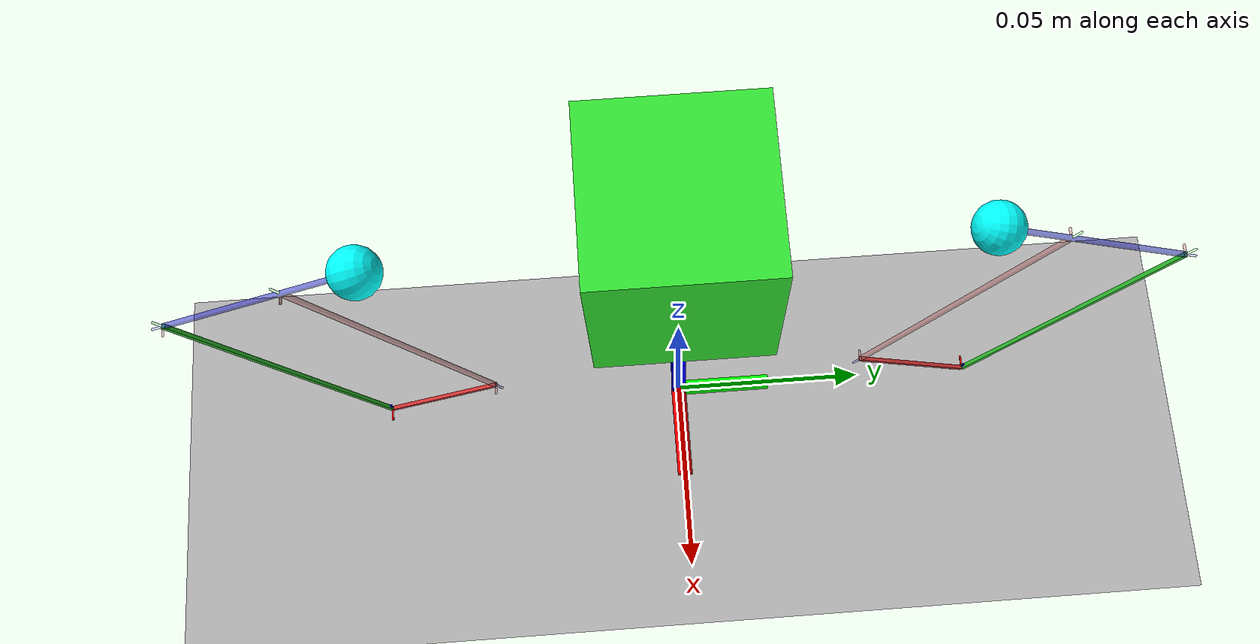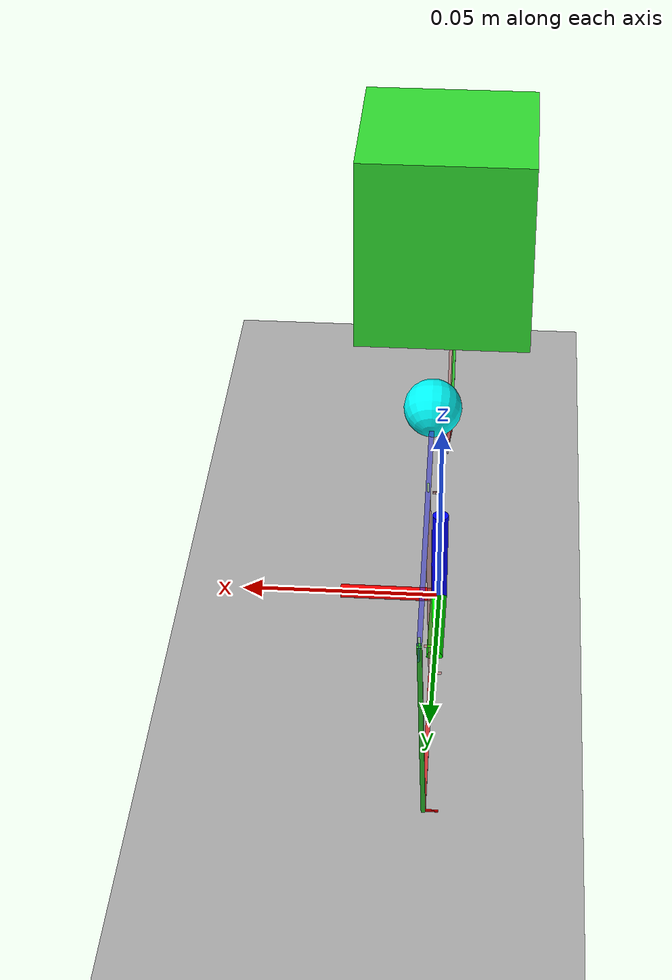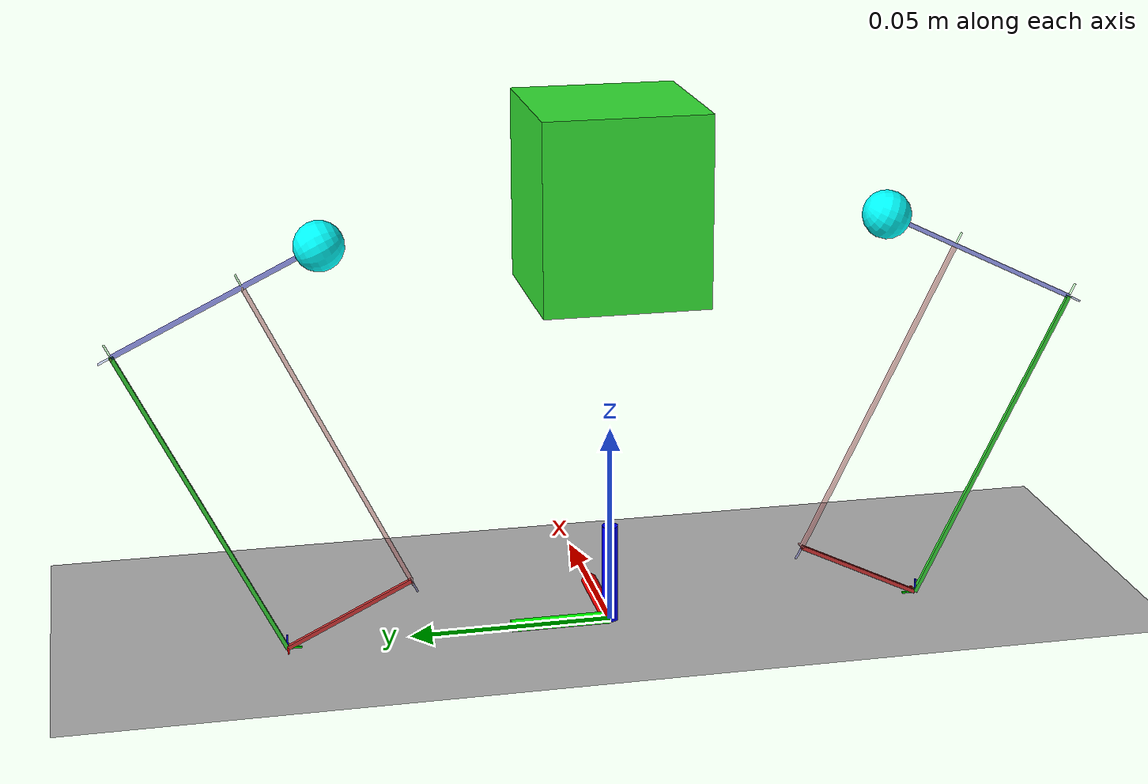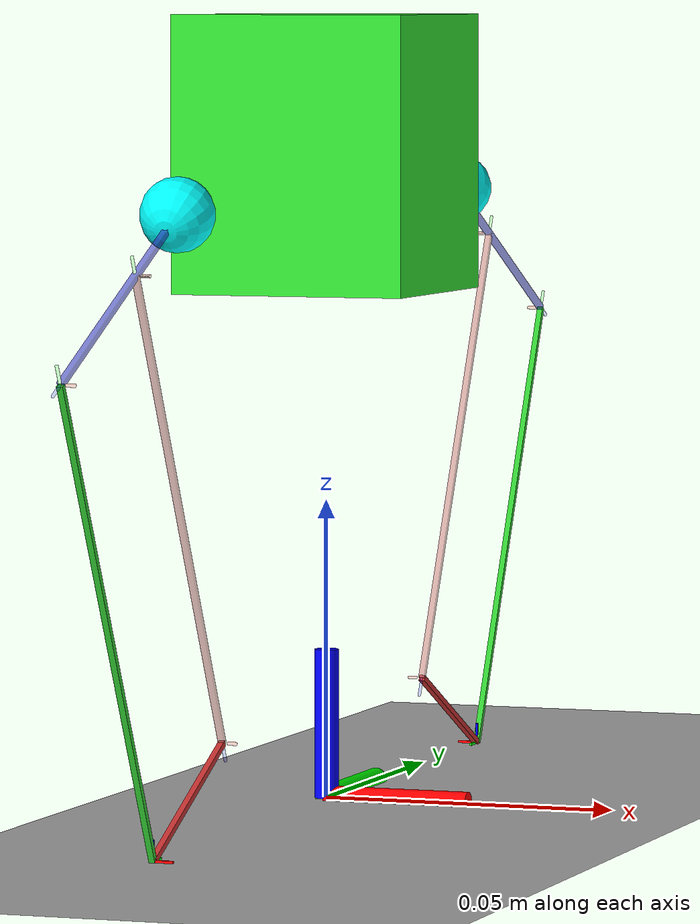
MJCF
<mujoco model="spatial_parallelogram_dual_finger">
  <compiler angle="degree" coordinate="local" eulerseq="xyz" inertiafromgeom="true"/>

  <option timestep="0.001" gravity="0 0 -9.81" iterations="50" tolerance="1e-10"/>

  <visual>
    <headlight diffuse="0.4 0.4 0.4" ambient="0.2 0.2 0.2" specular="0.1 0.1 0.1"/>
    <rgba haze="0.15 0.25 0.35 1"/>
    <global azimuth="120" elevation="-20"/>
  </visual>

  <default>
    <!-- 默认碰撞关闭 (0), 需要碰撞的物体显式开启 (1) -->
    <geom type="box" rgba="0.7 0.7 0.7 0.6" contype="0" conaffinity="0"/>
    <joint damping="0.05" armature="0.01" frictionloss="0.01"/>
    <default class="viz_axis">
        <geom type="box" size="0.0008 0.0002 0.0002" contype="0" conaffinity="0" rgba="1 1 1 0.1"/>
    </default>
    <default class="global_axis">
        <geom type="cylinder" size="0.002" contype="0" conaffinity="0"/>
    </default>
    <!-- 专门为碰撞体定义的类 -->
    <default class="collision_primitive">
        <geom contype="1" conaffinity="1"/>
    </default>
  </default>

  <asset>
    <texture type="skybox" builtin="gradient" rgb1="0.3 0.5 0.7" rgb2="0 0 0" width="512" height="3072"/>
    <texture type="2d" name="groundplane" builtin="checker" rgb1="0.2 0.3 0.4" rgb2="0.1 0.2 0.3" width="100" height="100"/>
    <material name="groundplane" texture="groundplane" texrepeat="10 10"/>
  </asset>

  <worldbody>

    <camera name="closeup" pos="0.15 -0.2 0.15" xyaxes="0.866 0.5 0 -0.3 0.5 0.8" mode="trackcom"/>

    <!-- 地板需开启碰撞，防止物体掉落 (虽然物体没有Z轴自由度，但为了物理正确性建议开启) -->
    <geom name="floor" size="0 0 .05" type="plane" material="groundplane" condim="3" contype="1" conaffinity="1"/>
    <light pos="0 0 3" dir="0 0 -1" directional="true" castshadow="true" diffuse="0.8 0.8 0.8" specular="0.3 0.3 0.3"/>

    <body name="world_axis" pos="0 0 0">
        <geom class="global_axis" fromto="0 0 0  0.025 0 0" rgba="1 0 0 1"/>
        <geom class="global_axis" fromto="0 0 0  0 0.025 0" rgba="0 1 0 1"/>
        <geom class="global_axis" fromto="0 0 0  0 0 0.025" rgba="0 0 1 1"/>
    </body>

    <!-- ==================== 操作物体 (Object) ==================== -->

    <body name="object" pos="0 0 0.108">
        <joint name="object_hinge_z" type="hinge" axis="0 0 1" damping="0.01"/>
        <geom name="object_geom" type="box" size="0.02   0.02 0.023" rgba="0.2 0.9 0.2 1"
              mass="0.05" condim="3" contype="1" conaffinity="1"/>
        <site name="object_center" rgba="0 0 0 0"/>
    </body>

    <!-- ==================== 右指 (Right Finger) ==================== -->
    <body name="figer_right" pos="0 -0.08 0">

        <body name="Frame_O_right" pos="0 0 0">
            <geom class="viz_axis" pos="0.0017 0 0" size="0.0017 0.0002 0.0002" rgba="1 0 0 1"/>
            <geom class="viz_axis" pos="0 0.0017 0" size="0.0002 0.0017 0.0002" rgba="0 1 0 1"/>
            <geom class="viz_axis" pos="0 0 0.0017" size="0.0002 0.0002 0.0017" rgba="0 0 1 1"/>
        </body>

        <!-- OA Chain Right -->
        <body name="Link_OA_Chain_right" pos="0 0 0" euler="116 0 0">
          <joint name="OA_active_x_right"  type="hinge" axis="1 0 0" range="0 140" damping="0.5"/>
          <joint name="OA_passive_z_right" type="hinge" axis="0 0 1" range="-60 60" damping="0.1"/>
          <joint name="OA_active_y_right"  type="hinge" axis="0 1 0" range="-16 16" damping="0.5"/>

          <geom name="geom_OA_right" fromto="0 0 0  0 0 -0.034" size="0.0005" rgba="0.8 0.2 0.2 1"/>

          <body name="Link_AC_right" pos="0 0 -0.034" euler="90 0 0">
            <body name="Frame_A_right" pos="0 0 0">
                <geom class="viz_axis" pos="0.0017 0 0" rgba="1 0 0 0.1"/>
                <geom class="viz_axis" pos="0 0.0017 0" size="0.0002 0.0017 0.0002" rgba="0 1 0 0.1"/>
                <geom class="viz_axis" pos="0 0 0.0017" size="0.0002 0.0002 0.0017" rgba="0 0 1 0.1"/>
            </body>

            <joint name="A_passive_x_right" type="hinge" axis="1 0 0" damping="0.1"/>
            <geom name="geom_AC_right" fromto="0 0 0  0 0 -0.085" size="0.0005" rgba="0.8 0.5 0.5 0.6"/>

            <site name="site_C_pivot_A_right" pos="0 0 -0.085" size="0.005" rgba="1 1 0 0"/>
            <site name="site_C_axis_A_right" pos="0.02 0 -0.085" size="0.003" rgba="1 0.5 0 0"/>

            <body name="Frame_C_from_A_right" pos="0 0 -0.085">
                <geom class="viz_axis" pos="0.0017 0 0" rgba="1 0 0 0.1"/>
                <geom class="viz_axis" pos="0 0.0017 0" size="0.0002 0.0017 0.0002" rgba="0 1 0 0.1"/>
                <geom class="viz_axis" pos="0 0 0.0017" size="0.0002 0.0002 0.0017" rgba="0 0 1 0.1"/>
            </body>
          </body>
        </body>

        <!-- OB Chain Right -->
        <body name="Link_OB_Chain_right" pos="0 0 0" euler="206 0 0">
          <joint name="OB_active_x_right"  type="hinge" axis="1 0 0" range="-90 50" damping="0.5"/>
          <joint name="OB_passive_z_right" type="hinge" axis="0 0 1" range="-180 180" damping="0.1"/>
          <joint name="OB_active_y_right"  type="hinge" axis="0 1 0" range="-16 16" damping="0.5"/>

          <geom name="geom_OB_right" fromto="0 0 0  0 0 -0.085" size="0.0005" rgba="0.2 0.8 0.2 1"/>

          <body name="Link_BCP_right" pos="0 0 -0.085" euler="-90 0 0">
            <body name="Frame_B_right" pos="0 0 0">
                <geom class="viz_axis" pos="0.0017 0 0" rgba="1 0 0 0.1"/>
                <geom class="viz_axis" pos="0 0.0017 0" size="0.0002 0.0017 0.0002" rgba="0 1 0 0.1"/>
                <geom class="viz_axis" pos="0 0 0.0017" size="0.0002 0.0002 0.0017" rgba="0 0 1 0.1"/>
            </body>

            <joint name="B_passive_x_right" type="hinge" axis="1 0 0" damping="0.1"/>
            <geom name="geom_BP_right" fromto="0 0 0  0 0 -0.054" size="0.0005" rgba="0.2 0.2 0.8 0.6" />
            <site name="site_C_pivot_B_right" pos="0 0 -0.034" size="0.005" rgba="1 1 0 0"/>
            <site name="site_C_axis_B_right" pos="0.02 0 -0.034" size="0.003" rgba="1 0.5 0 0"/>

            <body name="Frame_C_from_B_right" pos="0 0 -0.034">
                <geom class="viz_axis" pos="0.0017 0 0" rgba="1 0 0 0.1"/>
                <geom class="viz_axis" pos="0 0.0017 0" size="0.0002 0.0017 0.0002" rgba="0 1 0 0.1"/>
                <geom class="viz_axis" pos="0 0 0.0017" size="0.0002 0.0002 0.0017" rgba="0 0 1 0.1"/>
            </body>

            <body name="Frame_P_right" pos="0 0 -0.054">
                <geom class="viz_axis" pos="0.0017 0 0" rgba="1 0 0 0.1"/>
                <geom class="viz_axis" pos="0 0.0017 0" size="0.0002 0.0017 0.0002" rgba="0 1 0 0.1"/>
                <geom class="viz_axis" pos="0 0 0.0017" size="0.0002 0.0002 0.0017" rgba="0 0 1 0.1"/>
            </body>

            <!--
                 重要修改：
                 原为 site，现改为 geom type="sphere"，并开启 contype="1" conaffinity="1"
                 以实现与物体的碰撞。
            -->
            <geom name="tip_geom_right" pos="0 0 -0.054" size="0.006" type="sphere" rgba="0 1 1 1" contype="1" conaffinity="1"/>

          </body>
        </body>
    </body>

    <!-- ==================== 左指 (Left Finger, Symmetric) ==================== -->
    <!-- 位置对称 (y=0.08)，并绕Z轴旋转180度以面对右指 -->
    <body name="figer_left" pos="0 0.08 0" euler="0 0 180">

        <body name="Frame_O_left" pos="0 0 0">
            <geom class="viz_axis" pos="0.0017 0 0" size="0.0017 0.0002 0.0002" rgba="1 0 0 1"/>
            <geom class="viz_axis" pos="0 0.0017 0" size="0.0002 0.0017 0.0002" rgba="0 1 0 1"/>
            <geom class="viz_axis" pos="0 0 0.0017" size="0.0002 0.0002 0.0017" rgba="0 0 1 1"/>
        </body>

        <!-- OA Chain Left -->
        <body name="Link_OA_Chain_left" pos="0 0 0" euler="116 0 0">
          <joint name="OA_active_x_left"  type="hinge" axis="1 0 0" range="0 140" damping="0.5"/>
          <joint name="OA_passive_z_left" type="hinge" axis="0 0 1" range="-60 60" damping="0.1"/>
          <joint name="OA_active_y_left"  type="hinge" axis="0 1 0" range="-16 16" damping="0.5"/>

          <geom name="geom_OA_left" fromto="0 0 0  0 0 -0.034" size="0.0005" rgba="0.8 0.2 0.2 1"/>

          <body name="Link_AC_left" pos="0 0 -0.034" euler="90 0 0">
            <body name="Frame_A_left" pos="0 0 0">
                <geom class="viz_axis" pos="0.0017 0 0" rgba="1 0 0 0.1"/>
                <geom class="viz_axis" pos="0 0.0017 0" size="0.0002 0.0017 0.0002" rgba="0 1 0 0.1"/>
                <geom class="viz_axis" pos="0 0 0.0017" size="0.0002 0.0002 0.0017" rgba="0 0 1 0.1"/>
            </body>

            <joint name="A_passive_x_left" type="hinge" axis="1 0 0" damping="0.1"/>
            <geom name="geom_AC_left" fromto="0 0 0  0 0 -0.085" size="0.0005" rgba="0.8 0.5 0.5 0.6"/>

            <site name="site_C_pivot_A_left" pos="0 0 -0.085" size="0.005" rgba="1 1 0 0"/>
            <site name="site_C_axis_A_left" pos="0.02 0 -0.085" size="0.003" rgba="1 0.5 0 0"/>

            <body name="Frame_C_from_A_left" pos="0 0 -0.085">
                <geom class="viz_axis" pos="0.0017 0 0" rgba="1 0 0 0.1"/>
                <geom class="viz_axis" pos="0 0.0017 0" size="0.0002 0.0017 0.0002" rgba="0 1 0 0.1"/>
                <geom class="viz_axis" pos="0 0 0.0017" size="0.0002 0.0002 0.0017" rgba="0 0 1 0.1"/>
            </body>
          </body>
        </body>

        <!-- OB Chain Left -->
        <body name="Link_OB_Chain_left" pos="0 0 0" euler="206 0 0">
          <joint name="OB_active_x_left"  type="hinge" axis="1 0 0" range="-90 50" damping="0.5"/>
          <joint name="OB_passive_z_left" type="hinge" axis="0 0 1" range="-180 180" damping="0.1"/>
          <joint name="OB_active_y_left"  type="hinge" axis="0 1 0" range="-16 16" damping="0.5"/>

          <geom name="geom_OB_left" fromto="0 0 0  0 0 -0.085" size="0.0005" rgba="0.2 0.8 0.2 1"/>

          <body name="Link_BCP_left" pos="0 0 -0.085" euler="-90 0 0">
            <body name="Frame_B_left" pos="0 0 0">
                <geom class="viz_axis" pos="0.0017 0 0" rgba="1 0 0 0.1"/>
                <geom class="viz_axis" pos="0 0.0017 0" size="0.0002 0.0017 0.0002" rgba="0 1 0 0.1"/>
                <geom class="viz_axis" pos="0 0 0.0017" size="0.0002 0.0002 0.0017" rgba="0 0 1 0.1"/>
            </body>

            <joint name="B_passive_x_left" type="hinge" axis="1 0 0" damping="0.1"/>
            <geom name="geom_BP_left" fromto="0 0 0  0 0 -0.054" size="0.0005" rgba="0.2 0.2 0.8 0.6" />
            <site name="site_C_pivot_B_left" pos="0 0 -0.034" size="0.005" rgba="1 1 0 0"/>
            <site name="site_C_axis_B_left" pos="0.02 0 -0.034" size="0.003" rgba="1 0.5 0 0"/>

            <body name="Frame_C_from_B_left" pos="0 0 -0.034">
                <geom class="viz_axis" pos="0.0017 0 0" rgba="1 0 0 0.1"/>
                <geom class="viz_axis" pos="0 0.0017 0" size="0.0002 0.0017 0.0002" rgba="0 1 0 0.1"/>
                <geom class="viz_axis" pos="0 0 0.0017" size="0.0002 0.0002 0.0017" rgba="0 0 1 0.1"/>
            </body>

            <body name="Frame_P_left" pos="0 0 -0.054">
                <geom class="viz_axis" pos="0.0017 0 0" rgba="1 0 0 0.1"/>
                <geom class="viz_axis" pos="0 0.0017 0" size="0.0002 0.0017 0.0002" rgba="0 1 0 0.1"/>
                <geom class="viz_axis" pos="0 0 0.0017" size="0.0002 0.0002 0.0017" rgba="0 0 1 0.1"/>
            </body>

            <!-- 左指尖碰撞体 -->
            <geom name="tip_geom_left" pos="0 0 -0.054" size="0.006" type="sphere" rgba="0 1 1 1" contype="1" conaffinity="1"/>

          </body>
        </body>
    </body>
  </worldbody>

  <equality>
    <!-- 右指闭链约束 -->
    <connect name="C_pivot_right" site1="site_C_pivot_A_right" site2="site_C_pivot_B_right" solimp="0.9 0.95 0.001" solref="0.02 1"/>
    <connect name="C_axis_right"  site1="site_C_axis_A_right"  site2="site_C_axis_B_right"  solimp="0.9 0.95 0.001" solref="0.02 1"/>

    <!-- 左指闭链约束 -->
    <connect name="C_pivot_left" site1="site_C_pivot_A_left" site2="site_C_pivot_B_left" solimp="0.9 0.95 0.001" solref="0.02 1"/>
    <connect name="C_axis_left"  site1="site_C_axis_A_left"  site2="site_C_axis_B_left"  solimp="0.9 0.95 0.001" solref="0.02 1"/>
  </equality>

  <tendon>
    <!-- 右指关节耦合 -->
    <fixed name="limit_angle_diff_right" range="-1.15192 0.331613">
      <joint joint="OB_active_x_right" coef="1"/>
      <joint joint="OA_active_x_right" coef="-1"/>
    </fixed>

    <!-- 左指关节耦合 -->
    <fixed name="limit_angle_diff_left" range="-1.15192 0.331613">
      <joint joint="OB_active_x_left" coef="1"/>
      <joint joint="OA_active_x_left" coef="-1"/>
    </fixed>
  </tendon>

  <actuator>
    <!-- 右指驱动 -->
    <position name="act_OA_x_right" joint="OA_active_x_right" kp="10" kv="1" ctrlrange="0 2.44346"/>
    <position name="act_OA_y_right" joint="OA_active_y_right" kp="10" kv="1" ctrlrange="-0.28 0.28"/>

    <position name="act_OB_x_right" joint="OB_active_x_right" kp="10" kv="1" ctrlrange="-1.57 0.872665"/>
    <position name="act_OB_y_right" joint="OB_active_y_right" kp="10" kv="1" ctrlrange="-0.28 0.28"/>

    <!-- 左指驱动 -->
    <position name="act_OA_x_left" joint="OA_active_x_left" kp="10" kv="1" ctrlrange="0 2.44346"/>
    <position name="act_OA_y_left" joint="OA_active_y_left" kp="10" kv="1" ctrlrange="-0.28 0.28"/>

    <position name="act_OB_x_left" joint="OB_active_x_left" kp="10" kv="1" ctrlrange="-1.57 0.872665"/>
    <position name="act_OB_y_left" joint="OB_active_y_left" kp="10" kv="1" ctrlrange="-0.28 0.28"/>
  </actuator>

</mujoco>
